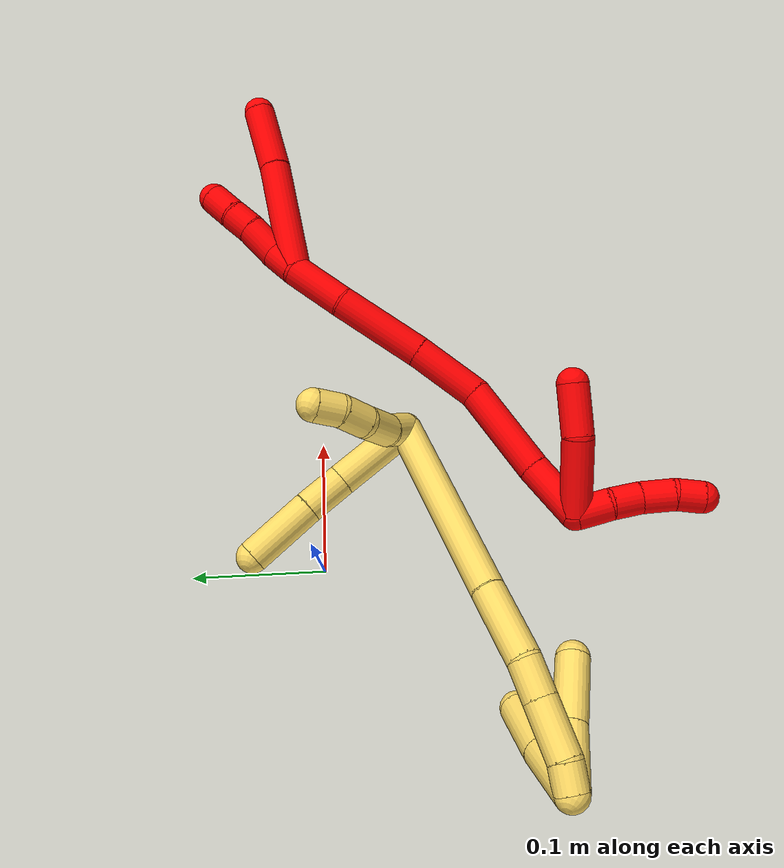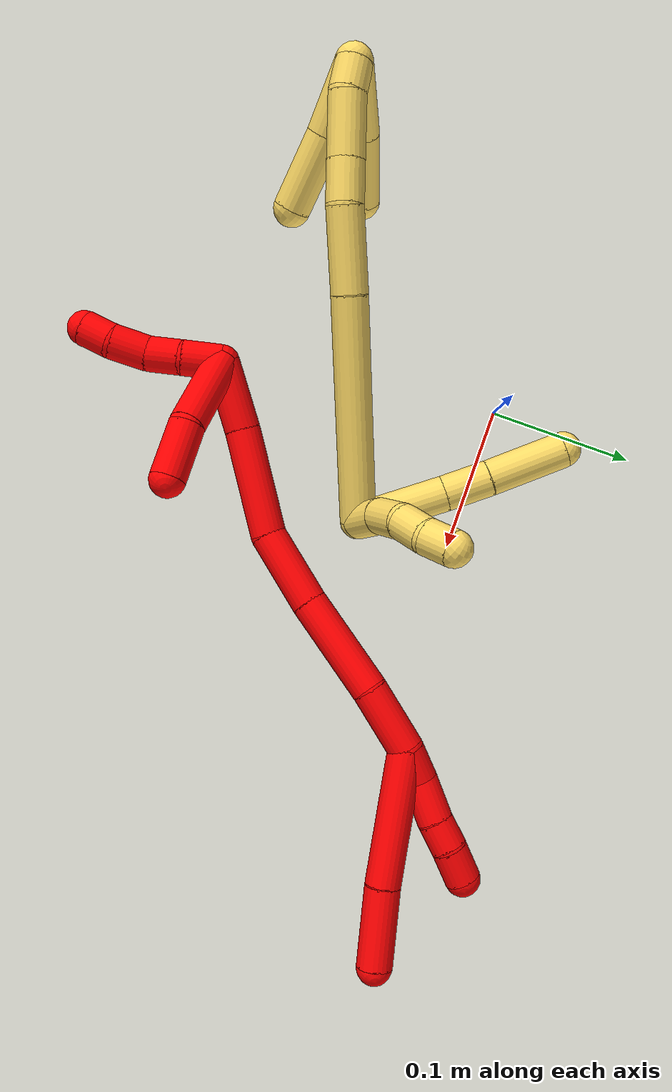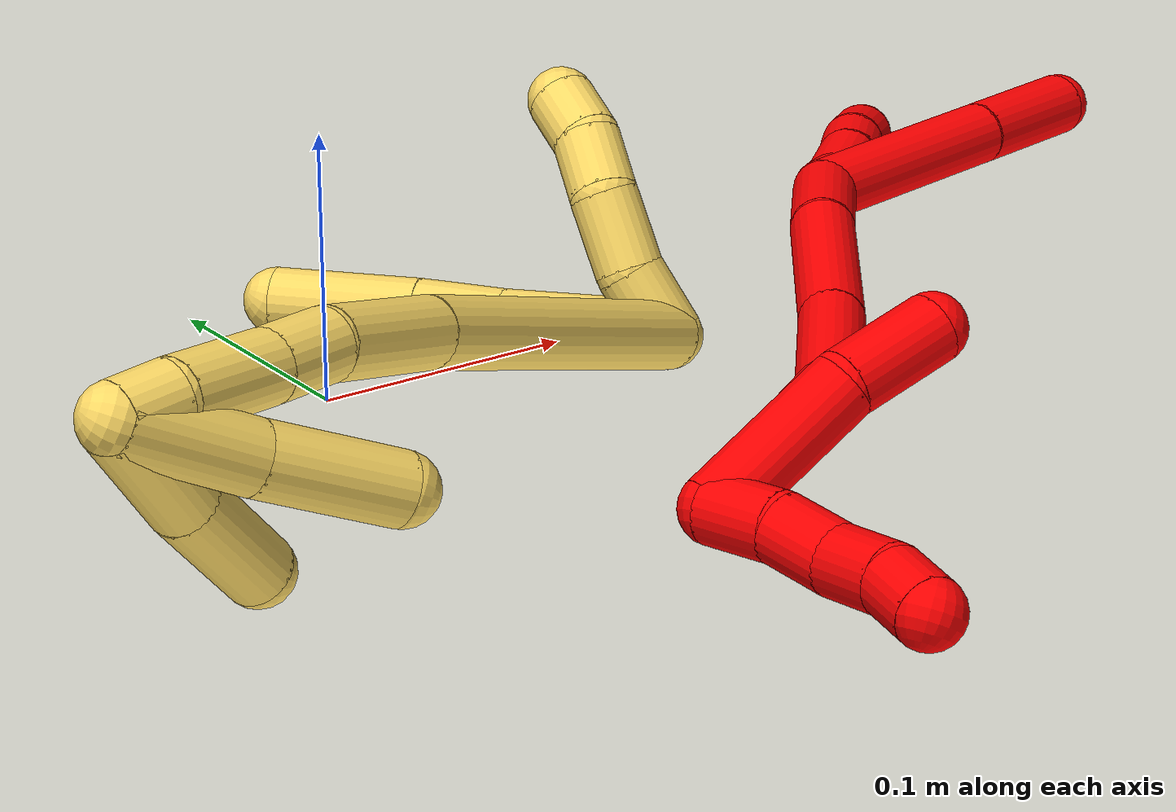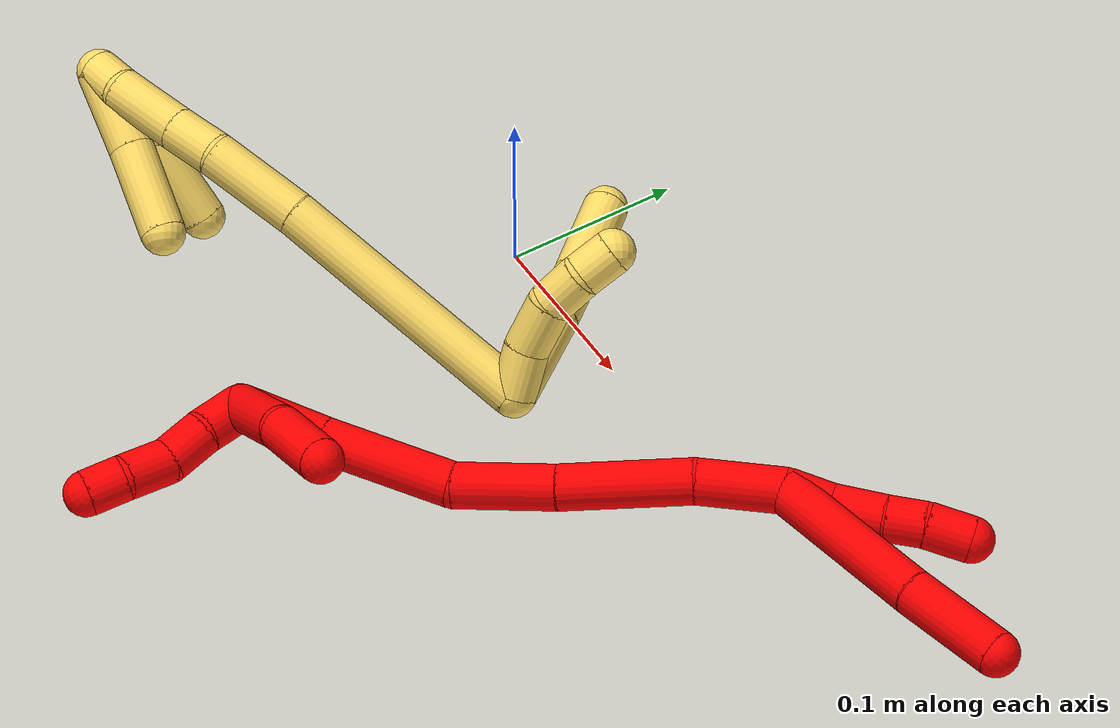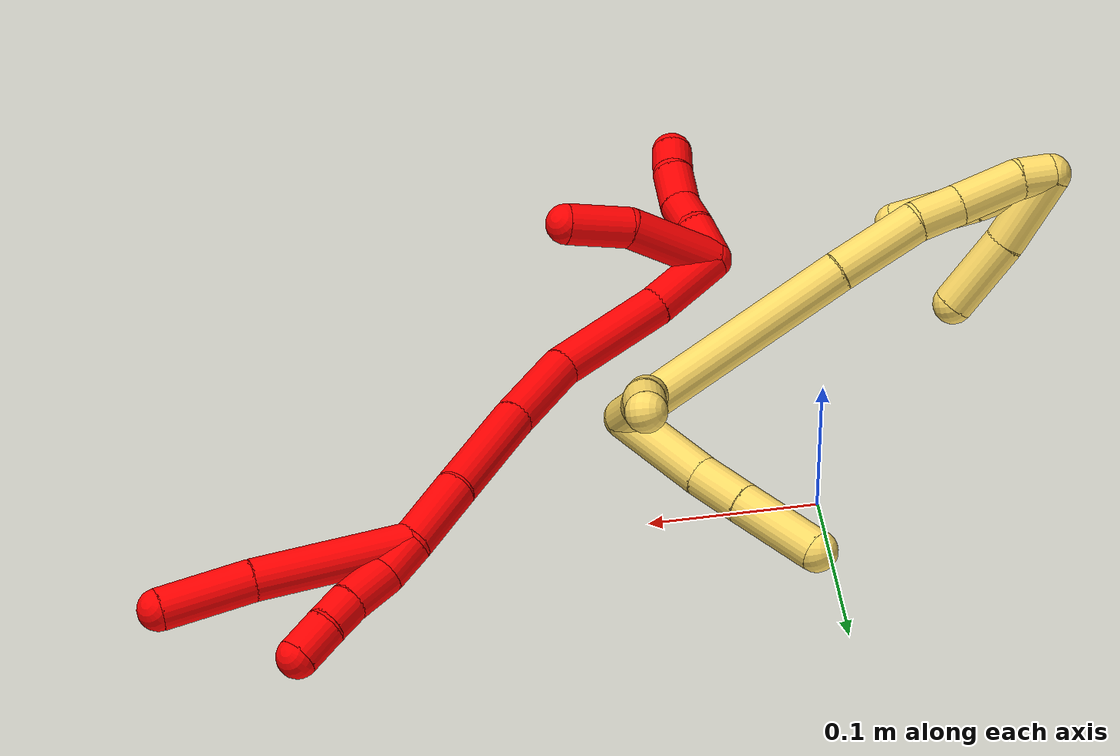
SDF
<sdf version="1.7">
 <world name="default">
  <model name="2">
   <static>0</static>
   <link name="2">
    <collision name="collision-cylinder-e_1_2_8">
     <pose>0.03824 0.007991 0.026102 -0.297097 0.950825 -0.153775</pose>
     <geometry><cylinder><radius>0.0125</radius><length>0.093967</length></cylinder></geometry>
     <surface>
      <friction><ode><mu>1.16</mu><mu2>1.16</mu2><slip1>0</slip1><slip2>0</slip2></ode></friction>
      <contact><ode><kp>1e+06</kp><kd>1</kd><max_vel>0</max_vel><min_depth>0.001</min_depth></ode></contact>
     </surface>
    </collision>
    <visual name="visual-cylinder-e_1_2_8">
     <pose>0.03824 0.007991 0.026102 -0.297097 0.950825 -0.153775</pose>
     <geometry><cylinder><radius>0.0125</radius><length>0.093967</length></cylinder></geometry>
     <material><ambient>1 0 0 1</ambient></material>
    </visual>
    <collision name="collision-cylinder-e_2_8_6">
     <pose>0.099154 0.022762 0.067199 -0.424618 0.943 -0.218927</pose>
     <geometry><cylinder><radius>0.0125</radius><length>0.056033</length></cylinder></geometry>
     <surface>
      <friction><ode><mu>1.16</mu><mu2>1.16</mu2><slip1>0</slip1><slip2>0</slip2></ode></friction>
      <contact><ode><kp>1e+06</kp><kd>1</kd><max_vel>0</max_vel><min_depth>0.001</min_depth></ode></contact>
     </surface>
    </collision>
    <visual name="visual-cylinder-e_2_8_6">
     <pose>0.099154 0.022762 0.067199 -0.424618 0.943 -0.218927</pose>
     <geometry><cylinder><radius>0.0125</radius><length>0.056033</length></cylinder></geometry>
     <material><ambient>1 0 0 1</ambient></material>
    </visual>
    <collision name="collision-cylinder-e_1_2_9">
     <pose>0.007585 0.008676 0.004188 -1.12109 0.666992 -0.428256</pose>
     <geometry><cylinder><radius>0.0125</radius><length>0.024523</length></cylinder></geometry>
     <surface>
      <friction><ode><mu>1.16</mu><mu2>1.16</mu2><slip1>0</slip1><slip2>0</slip2></ode></friction>
      <contact><ode><kp>1e+06</kp><kd>1</kd><max_vel>0</max_vel><min_depth>0.001</min_depth></ode></contact>
     </surface>
    </collision>
    <visual name="visual-cylinder-e_1_2_9">
     <pose>0.007585 0.008676 0.004188 -1.12109 0.666992 -0.428256</pose>
     <geometry><cylinder><radius>0.0125</radius><length>0.024523</length></cylinder></geometry>
     <material><ambient>1 0 0 1</ambient></material>
    </visual>
    <collision name="collision-cylinder-e_2_9_10">
     <pose>0.023178 0.026616 0.016867 -0.828856 0.567333 -0.255097</pose>
     <geometry><cylinder><radius>0.0125</radius><length>0.029802</length></cylinder></geometry>
     <surface>
      <friction><ode><mu>1.16</mu><mu2>1.16</mu2><slip1>0</slip1><slip2>0</slip2></ode></friction>
      <contact><ode><kp>1e+06</kp><kd>1</kd><max_vel>0</max_vel><min_depth>0.001</min_depth></ode></contact>
     </surface>
    </collision>
    <visual name="visual-cylinder-e_2_9_10">
     <pose>0.023178 0.026616 0.016867 -0.828856 0.567333 -0.255097</pose>
     <geometry><cylinder><radius>0.0125</radius><length>0.029802</length></cylinder></geometry>
     <material><ambient>1 0 0 1</ambient></material>
    </visual>
    <collision name="collision-cylinder-e_3_10_11">
     <pose>0.036308 0.043288 0.030682 -0.947683 0.511594 -0.266634</pose>
     <geometry><cylinder><radius>0.0125</radius><length>0.020925</length></cylinder></geometry>
     <surface>
      <friction><ode><mu>1.16</mu><mu2>1.16</mu2><slip1>0</slip1><slip2>0</slip2></ode></friction>
      <contact><ode><kp>1e+06</kp><kd>1</kd><max_vel>0</max_vel><min_depth>0.001</min_depth></ode></contact>
     </surface>
    </collision>
    <visual name="visual-cylinder-e_3_10_11">
     <pose>0.036308 0.043288 0.030682 -0.947683 0.511594 -0.266634</pose>
     <geometry><cylinder><radius>0.0125</radius><length>0.020925</length></cylinder></geometry>
     <material><ambient>1 0 0 1</ambient></material>
    </visual>
    <collision name="collision-cylinder-e_4_11_5">
     <pose>0.048892 0.059356 0.040744 -1.07018 0.647266 -0.392546</pose>
     <geometry><cylinder><radius>0.0125</radius><length>0.02475</length></cylinder></geometry>
     <surface>
      <friction><ode><mu>1.16</mu><mu2>1.16</mu2><slip1>0</slip1><slip2>0</slip2></ode></friction>
      <contact><ode><kp>1e+06</kp><kd>1</kd><max_vel>0</max_vel><min_depth>0.001</min_depth></ode></contact>
     </surface>
    </collision>
    <visual name="visual-cylinder-e_4_11_5">
     <pose>0.048892 0.059356 0.040744 -1.07018 0.647266 -0.392546</pose>
     <geometry><cylinder><radius>0.0125</radius><length>0.02475</length></cylinder></geometry>
     <material><ambient>1 0 0 1</ambient></material>
    </visual>
    <collision name="collision-cylinder-e_1_2_12">
     <pose>-0.010244 -0.017988 -0.0116 2.14357 -0.446372 -0.789192</pose>
     <geometry><cylinder><radius>0.0125</radius><length>0.047459</length></cylinder></geometry>
     <surface>
      <friction><ode><mu>1.16</mu><mu2>1.16</mu2><slip1>0</slip1><slip2>0</slip2></ode></friction>
      <contact><ode><kp>1e+06</kp><kd>1</kd><max_vel>0</max_vel><min_depth>0.001</min_depth></ode></contact>
     </surface>
    </collision>
    <visual name="visual-cylinder-e_1_2_12">
     <pose>-0.010244 -0.017988 -0.0116 2.14357 -0.446372 -0.789192</pose>
     <geometry><cylinder><radius>0.0125</radius><length>0.047459</length></cylinder></geometry>
     <material><ambient>1 0 0 1</ambient></material>
    </visual>
    <collision name="collision-cylinder-e_2_12_13">
     <pose>-0.031475 -0.063099 -0.044697 2.24099 -0.307413 -0.620277</pose>
     <geometry><cylinder><radius>0.0125</radius><length>0.072621</length></cylinder></geometry>
     <surface>
      <friction><ode><mu>1.16</mu><mu2>1.16</mu2><slip1>0</slip1><slip2>0</slip2></ode></friction>
      <contact><ode><kp>1e+06</kp><kd>1</kd><max_vel>0</max_vel><min_depth>0.001</min_depth></ode></contact>
     </surface>
    </collision>
    <visual name="visual-cylinder-e_2_12_13">
     <pose>-0.031475 -0.063099 -0.044697 2.24099 -0.307413 -0.620277</pose>
     <geometry><cylinder><radius>0.0125</radius><length>0.072621</length></cylinder></geometry>
     <material><ambient>1 0 0 1</ambient></material>
    </visual>
    <collision name="collision-cylinder-e_3_13_14">
     <pose>-0.052668 -0.110215 -0.082484 2.25448 -0.376829 -0.763276</pose>
     <geometry><cylinder><radius>0.0125</radius><length>0.05547</length></cylinder></geometry>
     <surface>
      <friction><ode><mu>1.16</mu><mu2>1.16</mu2><slip1>0</slip1><slip2>0</slip2></ode></friction>
      <contact><ode><kp>1e+06</kp><kd>1</kd><max_vel>0</max_vel><min_depth>0.001</min_depth></ode></contact>
     </surface>
    </collision>
    <visual name="visual-cylinder-e_3_13_14">
     <pose>-0.052668 -0.110215 -0.082484 2.25448 -0.376829 -0.763276</pose>
     <geometry><cylinder><radius>0.0125</radius><length>0.05547</length></cylinder></geometry>
     <material><ambient>1 0 0 1</ambient></material>
    </visual>
    <collision name="collision-cylinder-e_4_14_15">
     <pose>-0.087017 -0.150633 -0.119622 2.36646 -0.691102 -1.44542</pose>
     <geometry><cylinder><radius>0.0125</radius><length>0.075756</length></cylinder></geometry>
     <surface>
      <friction><ode><mu>1.16</mu><mu2>1.16</mu2><slip1>0</slip1><slip2>0</slip2></ode></friction>
      <contact><ode><kp>1e+06</kp><kd>1</kd><max_vel>0</max_vel><min_depth>0.001</min_depth></ode></contact>
     </surface>
    </collision>
    <visual name="visual-cylinder-e_4_14_15">
     <pose>-0.087017 -0.150633 -0.119622 2.36646 -0.691102 -1.44542</pose>
     <geometry><cylinder><radius>0.0125</radius><length>0.075756</length></cylinder></geometry>
     <material><ambient>1 0 0 1</ambient></material>
    </visual>
    <collision name="collision-cylinder-e_5_15_1">
     <pose>-0.12726 -0.185753 -0.151316 2.20656 -0.722526 -1.28501</pose>
     <geometry><cylinder><radius>0.0125</radius><length>0.048694</length></cylinder></geometry>
     <surface>
      <friction><ode><mu>1.16</mu><mu2>1.16</mu2><slip1>0</slip1><slip2>0</slip2></ode></friction>
      <contact><ode><kp>1e+06</kp><kd>1</kd><max_vel>0</max_vel><min_depth>0.001</min_depth></ode></contact>
     </surface>
    </collision>
    <visual name="visual-cylinder-e_5_15_1">
     <pose>-0.12726 -0.185753 -0.151316 2.20656 -0.722526 -1.28501</pose>
     <geometry><cylinder><radius>0.0125</radius><length>0.048694</length></cylinder></geometry>
     <material><ambient>1 0 0 1</ambient></material>
    </visual>
    <collision name="collision-cylinder-e_1_1_16">
     <pose>-0.13898 -0.213458 -0.163181 1.64904 0.323864 0.349736</pose>
     <geometry><cylinder><radius>0.0125</radius><length>0.02753</length></cylinder></geometry>
     <surface>
      <friction><ode><mu>1.16</mu><mu2>1.16</mu2><slip1>0</slip1><slip2>0</slip2></ode></friction>
      <contact><ode><kp>1e+06</kp><kd>1</kd><max_vel>0</max_vel><min_depth>0.001</min_depth></ode></contact>
     </surface>
    </collision>
    <visual name="visual-cylinder-e_1_1_16">
     <pose>-0.13898 -0.213458 -0.163181 1.64904 0.323864 0.349736</pose>
     <geometry><cylinder><radius>0.0125</radius><length>0.02753</length></cylinder></geometry>
     <material><ambient>1 0 0 1</ambient></material>
    </visual>
    <collision name="collision-cylinder-e_2_16_17">
     <pose>-0.129724 -0.237364 -0.167398 1.85616 0.405499 0.535889</pose>
     <geometry><cylinder><radius>0.0125</radius><length>0.024717</length></cylinder></geometry>
     <surface>
      <friction><ode><mu>1.16</mu><mu2>1.16</mu2><slip1>0</slip1><slip2>0</slip2></ode></friction>
      <contact><ode><kp>1e+06</kp><kd>1</kd><max_vel>0</max_vel><min_depth>0.001</min_depth></ode></contact>
     </surface>
    </collision>
    <visual name="visual-cylinder-e_2_16_17">
     <pose>-0.129724 -0.237364 -0.167398 1.85616 0.405499 0.535889</pose>
     <geometry><cylinder><radius>0.0125</radius><length>0.024717</length></cylinder></geometry>
     <material><ambient>1 0 0 1</ambient></material>
    </visual>
    <collision name="collision-cylinder-e_3_17_18">
     <pose>-0.123278 -0.261309 -0.172333 1.70324 0.118807 0.135637</pose>
     <geometry><cylinder><radius>0.0125</radius><length>0.026512</length></cylinder></geometry>
     <surface>
      <friction><ode><mu>1.16</mu><mu2>1.16</mu2><slip1>0</slip1><slip2>0</slip2></ode></friction>
      <contact><ode><kp>1e+06</kp><kd>1</kd><max_vel>0</max_vel><min_depth>0.001</min_depth></ode></contact>
     </surface>
    </collision>
    <visual name="visual-cylinder-e_3_17_18">
     <pose>-0.123278 -0.261309 -0.172333 1.70324 0.118807 0.135637</pose>
     <geometry><cylinder><radius>0.0125</radius><length>0.026512</length></cylinder></geometry>
     <material><ambient>1 0 0 1</ambient></material>
    </visual>
    <collision name="collision-cylinder-e_4_18_4">
     <pose>-0.120673 -0.284118 -0.178124 1.96435 0.097505 0.145918</pose>
     <geometry><cylinder><radius>0.0125</radius><length>0.021241</length></cylinder></geometry>
     <surface>
      <friction><ode><mu>1.16</mu><mu2>1.16</mu2><slip1>0</slip1><slip2>0</slip2></ode></friction>
      <contact><ode><kp>1e+06</kp><kd>1</kd><max_vel>0</max_vel><min_depth>0.001</min_depth></ode></contact>
     </surface>
    </collision>
    <visual name="visual-cylinder-e_4_18_4">
     <pose>-0.120673 -0.284118 -0.178124 1.96435 0.097505 0.145918</pose>
     <geometry><cylinder><radius>0.0125</radius><length>0.021241</length></cylinder></geometry>
     <material><ambient>1 0 0 1</ambient></material>
    </visual>
    <collision name="collision-cylinder-e_1_1_19">
     <pose>-0.129274 -0.205852 -0.136222 0.2054 0.488651 0.051377</pose>
     <geometry><cylinder><radius>0.0125</radius><length>0.060015</length></cylinder></geometry>
     <surface>
      <friction><ode><mu>1.16</mu><mu2>1.16</mu2><slip1>0</slip1><slip2>0</slip2></ode></friction>
      <contact><ode><kp>1e+06</kp><kd>1</kd><max_vel>0</max_vel><min_depth>0.001</min_depth></ode></contact>
     </surface>
    </collision>
    <visual name="visual-cylinder-e_1_1_19">
     <pose>-0.129274 -0.205852 -0.136222 0.2054 0.488651 0.051377</pose>
     <geometry><cylinder><radius>0.0125</radius><length>0.060015</length></cylinder></geometry>
     <material><ambient>1 0 0 1</ambient></material>
    </visual>
    <collision name="collision-cylinder-e_2_19_3">
     <pose>-0.101296 -0.211607 -0.095909 0.024356 0.768149 0.009844</pose>
     <geometry><cylinder><radius>0.0125</radius><length>0.039985</length></cylinder></geometry>
     <surface>
      <friction><ode><mu>1.16</mu><mu2>1.16</mu2><slip1>0</slip1><slip2>0</slip2></ode></friction>
      <contact><ode><kp>1e+06</kp><kd>1</kd><max_vel>0</max_vel><min_depth>0.001</min_depth></ode></contact>
     </surface>
    </collision>
    <visual name="visual-cylinder-e_2_19_3">
     <pose>-0.101296 -0.211607 -0.095909 0.024356 0.768149 0.009844</pose>
     <geometry><cylinder><radius>0.0125</radius><length>0.039985</length></cylinder></geometry>
     <material><ambient>1 0 0 1</ambient></material>
    </visual>
    <collision name="collision-sphere-3">
     <pose>-0.087405 -0.211957 -0.081535 0 -0 0</pose>
     <geometry><sphere><radius>0.0125</radius></sphere></geometry>
     <surface>
      <friction><ode><mu>1.16</mu><mu2>1.16</mu2><slip1>0</slip1><slip2>0</slip2></ode></friction>
      <contact><ode><kp>1e+06</kp><kd>1</kd><max_vel>0</max_vel><min_depth>0.001</min_depth></ode></contact>
     </surface>
    </collision>
    <visual name="visual-sphere-3">
     <pose>-0.087405 -0.211957 -0.081535 0 -0 0</pose>
     <geometry><sphere><radius>0.0125</radius></sphere></geometry>
     <material><ambient>1 0 0 1</ambient></material>
    </visual>
    <collision name="collision-sphere-19">
     <pose>-0.115187 -0.211256 -0.110283 0 -0 0</pose>
     <geometry><sphere><radius>0.0125</radius></sphere></geometry>
     <surface>
      <friction><ode><mu>1.16</mu><mu2>1.16</mu2><slip1>0</slip1><slip2>0</slip2></ode></friction>
      <contact><ode><kp>1e+06</kp><kd>1</kd><max_vel>0</max_vel><min_depth>0.001</min_depth></ode></contact>
     </surface>
    </collision>
    <visual name="visual-sphere-19">
     <pose>-0.115187 -0.211256 -0.110283 0 -0 0</pose>
     <geometry><sphere><radius>0.0125</radius></sphere></geometry>
     <material><ambient>1 0 0 1</ambient></material>
    </visual>
    <collision name="collision-sphere-11">
     <pose>0.04143 0.050696 0.036006 0 -0 0</pose>
     <geometry><sphere><radius>0.0125</radius></sphere></geometry>
     <surface>
      <friction><ode><mu>1.16</mu><mu2>1.16</mu2><slip1>0</slip1><slip2>0</slip2></ode></friction>
      <contact><ode><kp>1e+06</kp><kd>1</kd><max_vel>0</max_vel><min_depth>0.001</min_depth></ode></contact>
     </surface>
    </collision>
    <visual name="visual-sphere-11">
     <pose>0.04143 0.050696 0.036006 0 -0 0</pose>
     <geometry><sphere><radius>0.0125</radius></sphere></geometry>
     <material><ambient>1 0 0 1</ambient></material>
    </visual>
    <collision name="collision-sphere-10">
     <pose>0.031186 0.035879 0.025359 0 -0 0</pose>
     <geometry><sphere><radius>0.0125</radius></sphere></geometry>
     <surface>
      <friction><ode><mu>1.16</mu><mu2>1.16</mu2><slip1>0</slip1><slip2>0</slip2></ode></friction>
      <contact><ode><kp>1e+06</kp><kd>1</kd><max_vel>0</max_vel><min_depth>0.001</min_depth></ode></contact>
     </surface>
    </collision>
    <visual name="visual-sphere-10">
     <pose>0.031186 0.035879 0.025359 0 -0 0</pose>
     <geometry><sphere><radius>0.0125</radius></sphere></geometry>
     <material><ambient>1 0 0 1</ambient></material>
    </visual>
    <collision name="collision-sphere-6">
     <pose>0.121828 0.029541 0.082193 0 -0 0</pose>
     <geometry><sphere><radius>0.0125</radius></sphere></geometry>
     <surface>
      <friction><ode><mu>1.16</mu><mu2>1.16</mu2><slip1>0</slip1><slip2>0</slip2></ode></friction>
      <contact><ode><kp>1e+06</kp><kd>1</kd><max_vel>0</max_vel><min_depth>0.001</min_depth></ode></contact>
     </surface>
    </collision>
    <visual name="visual-sphere-6">
     <pose>0.121828 0.029541 0.082193 0 -0 0</pose>
     <geometry><sphere><radius>0.0125</radius></sphere></geometry>
     <material><ambient>1 0 0 1</ambient></material>
    </visual>
    <collision name="collision-sphere-9">
     <pose>0.015171 0.017352 0.008376 0 -0 0</pose>
     <geometry><sphere><radius>0.0125</radius></sphere></geometry>
     <surface>
      <friction><ode><mu>1.16</mu><mu2>1.16</mu2><slip1>0</slip1><slip2>0</slip2></ode></friction>
      <contact><ode><kp>1e+06</kp><kd>1</kd><max_vel>0</max_vel><min_depth>0.001</min_depth></ode></contact>
     </surface>
    </collision>
    <visual name="visual-sphere-9">
     <pose>0.015171 0.017352 0.008376 0 -0 0</pose>
     <geometry><sphere><radius>0.0125</radius></sphere></geometry>
     <material><ambient>1 0 0 1</ambient></material>
    </visual>
    <collision name="collision-sphere-2">
     <geometry><sphere><radius>0.0125</radius></sphere></geometry>
     <surface>
      <friction><ode><mu>1.16</mu><mu2>1.16</mu2><slip1>0</slip1><slip2>0</slip2></ode></friction>
      <contact><ode><kp>1e+06</kp><kd>1</kd><max_vel>0</max_vel><min_depth>0.001</min_depth></ode></contact>
     </surface>
    </collision>
    <visual name="visual-sphere-2">
     <geometry><sphere><radius>0.0125</radius></sphere></geometry>
     <material><ambient>1 0 0 1</ambient></material>
    </visual>
    <collision name="collision-sphere-8">
     <pose>0.076479 0.015983 0.052204 0 -0 0</pose>
     <geometry><sphere><radius>0.0125</radius></sphere></geometry>
     <surface>
      <friction><ode><mu>1.16</mu><mu2>1.16</mu2><slip1>0</slip1><slip2>0</slip2></ode></friction>
      <contact><ode><kp>1e+06</kp><kd>1</kd><max_vel>0</max_vel><min_depth>0.001</min_depth></ode></contact>
     </surface>
    </collision>
    <visual name="visual-sphere-8">
     <pose>0.076479 0.015983 0.052204 0 -0 0</pose>
     <geometry><sphere><radius>0.0125</radius></sphere></geometry>
     <material><ambient>1 0 0 1</ambient></material>
    </visual>
    <collision name="collision-sphere-5">
     <pose>0.056354 0.068017 0.045482 0 -0 0</pose>
     <geometry><sphere><radius>0.0125</radius></sphere></geometry>
     <surface>
      <friction><ode><mu>1.16</mu><mu2>1.16</mu2><slip1>0</slip1><slip2>0</slip2></ode></friction>
      <contact><ode><kp>1e+06</kp><kd>1</kd><max_vel>0</max_vel><min_depth>0.001</min_depth></ode></contact>
     </surface>
    </collision>
    <visual name="visual-sphere-5">
     <pose>0.056354 0.068017 0.045482 0 -0 0</pose>
     <geometry><sphere><radius>0.0125</radius></sphere></geometry>
     <material><ambient>1 0 0 1</ambient></material>
    </visual>
    <collision name="collision-sphere-12">
     <pose>-0.020488 -0.035977 -0.023201 0 -0 0</pose>
     <geometry><sphere><radius>0.0125</radius></sphere></geometry>
     <surface>
      <friction><ode><mu>1.16</mu><mu2>1.16</mu2><slip1>0</slip1><slip2>0</slip2></ode></friction>
      <contact><ode><kp>1e+06</kp><kd>1</kd><max_vel>0</max_vel><min_depth>0.001</min_depth></ode></contact>
     </surface>
    </collision>
    <visual name="visual-sphere-12">
     <pose>-0.020488 -0.035977 -0.023201 0 -0 0</pose>
     <geometry><sphere><radius>0.0125</radius></sphere></geometry>
     <material><ambient>1 0 0 1</ambient></material>
    </visual>
    <collision name="collision-sphere-13">
     <pose>-0.042463 -0.090222 -0.066194 0 -0 0</pose>
     <geometry><sphere><radius>0.0125</radius></sphere></geometry>
     <surface>
      <friction><ode><mu>1.16</mu><mu2>1.16</mu2><slip1>0</slip1><slip2>0</slip2></ode></friction>
      <contact><ode><kp>1e+06</kp><kd>1</kd><max_vel>0</max_vel><min_depth>0.001</min_depth></ode></contact>
     </surface>
    </collision>
    <visual name="visual-sphere-13">
     <pose>-0.042463 -0.090222 -0.066194 0 -0 0</pose>
     <geometry><sphere><radius>0.0125</radius></sphere></geometry>
     <material><ambient>1 0 0 1</ambient></material>
    </visual>
    <collision name="collision-sphere-14">
     <pose>-0.062874 -0.130208 -0.098774 0 -0 0</pose>
     <geometry><sphere><radius>0.0125</radius></sphere></geometry>
     <surface>
      <friction><ode><mu>1.16</mu><mu2>1.16</mu2><slip1>0</slip1><slip2>0</slip2></ode></friction>
      <contact><ode><kp>1e+06</kp><kd>1</kd><max_vel>0</max_vel><min_depth>0.001</min_depth></ode></contact>
     </surface>
    </collision>
    <visual name="visual-sphere-14">
     <pose>-0.062874 -0.130208 -0.098774 0 -0 0</pose>
     <geometry><sphere><radius>0.0125</radius></sphere></geometry>
     <material><ambient>1 0 0 1</ambient></material>
    </visual>
    <collision name="collision-sphere-15">
     <pose>-0.11116 -0.171058 -0.140471 0 -0 0</pose>
     <geometry><sphere><radius>0.0125</radius></sphere></geometry>
     <surface>
      <friction><ode><mu>1.16</mu><mu2>1.16</mu2><slip1>0</slip1><slip2>0</slip2></ode></friction>
      <contact><ode><kp>1e+06</kp><kd>1</kd><max_vel>0</max_vel><min_depth>0.001</min_depth></ode></contact>
     </surface>
    </collision>
    <visual name="visual-sphere-15">
     <pose>-0.11116 -0.171058 -0.140471 0 -0 0</pose>
     <geometry><sphere><radius>0.0125</radius></sphere></geometry>
     <material><ambient>1 0 0 1</ambient></material>
    </visual>
    <collision name="collision-sphere-1">
     <pose>-0.14336 -0.200448 -0.162161 0 -0 0</pose>
     <geometry><sphere><radius>0.0125</radius></sphere></geometry>
     <surface>
      <friction><ode><mu>1.16</mu><mu2>1.16</mu2><slip1>0</slip1><slip2>0</slip2></ode></friction>
      <contact><ode><kp>1e+06</kp><kd>1</kd><max_vel>0</max_vel><min_depth>0.001</min_depth></ode></contact>
     </surface>
    </collision>
    <visual name="visual-sphere-1">
     <pose>-0.14336 -0.200448 -0.162161 0 -0 0</pose>
     <geometry><sphere><radius>0.0125</radius></sphere></geometry>
     <material><ambient>1 0 0 1</ambient></material>
    </visual>
    <collision name="collision-sphere-18">
     <pose>-0.121707 -0.274356 -0.174071 0 -0 0</pose>
     <geometry><sphere><radius>0.0125</radius></sphere></geometry>
     <surface>
      <friction><ode><mu>1.16</mu><mu2>1.16</mu2><slip1>0</slip1><slip2>0</slip2></ode></friction>
      <contact><ode><kp>1e+06</kp><kd>1</kd><max_vel>0</max_vel><min_depth>0.001</min_depth></ode></contact>
     </surface>
    </collision>
    <visual name="visual-sphere-18">
     <pose>-0.121707 -0.274356 -0.174071 0 -0 0</pose>
     <geometry><sphere><radius>0.0125</radius></sphere></geometry>
     <material><ambient>1 0 0 1</ambient></material>
    </visual>
    <collision name="collision-sphere-16">
     <pose>-0.134599 -0.226468 -0.164201 0 -0 0</pose>
     <geometry><sphere><radius>0.0125</radius></sphere></geometry>
     <surface>
      <friction><ode><mu>1.16</mu><mu2>1.16</mu2><slip1>0</slip1><slip2>0</slip2></ode></friction>
      <contact><ode><kp>1e+06</kp><kd>1</kd><max_vel>0</max_vel><min_depth>0.001</min_depth></ode></contact>
     </surface>
    </collision>
    <visual name="visual-sphere-16">
     <pose>-0.134599 -0.226468 -0.164201 0 -0 0</pose>
     <geometry><sphere><radius>0.0125</radius></sphere></geometry>
     <material><ambient>1 0 0 1</ambient></material>
    </visual>
    <collision name="collision-sphere-17">
     <pose>-0.124849 -0.248261 -0.170594 0 -0 0</pose>
     <geometry><sphere><radius>0.0125</radius></sphere></geometry>
     <surface>
      <friction><ode><mu>1.16</mu><mu2>1.16</mu2><slip1>0</slip1><slip2>0</slip2></ode></friction>
      <contact><ode><kp>1e+06</kp><kd>1</kd><max_vel>0</max_vel><min_depth>0.001</min_depth></ode></contact>
     </surface>
    </collision>
    <visual name="visual-sphere-17">
     <pose>-0.124849 -0.248261 -0.170594 0 -0 0</pose>
     <geometry><sphere><radius>0.0125</radius></sphere></geometry>
     <material><ambient>1 0 0 1</ambient></material>
    </visual>
    <collision name="collision-sphere-4">
     <pose>-0.119639 -0.29388 -0.182178 0 -0 0</pose>
     <geometry><sphere><radius>0.0125</radius></sphere></geometry>
     <surface>
      <friction><ode><mu>1.16</mu><mu2>1.16</mu2><slip1>0</slip1><slip2>0</slip2></ode></friction>
      <contact><ode><kp>1e+06</kp><kd>1</kd><max_vel>0</max_vel><min_depth>0.001</min_depth></ode></contact>
     </surface>
    </collision>
    <visual name="visual-sphere-4">
     <pose>-0.119639 -0.29388 -0.182178 0 -0 0</pose>
     <geometry><sphere><radius>0.0125</radius></sphere></geometry>
     <material><ambient>1 0 0 1</ambient></material>
    </visual>
    <inertial>
     <pose>-0.041546 -0.096161 -0.060428 0 -0 0</pose>
     <mass>0.75</mass>
     <inertia><ixx>6.8e-05</ixx><ixy>0</ixy><ixz>0</ixz><iyy>2.1e-05</iyy><iyz>0</iyz><izz>2.5e-05</izz></inertia>
    </inertial>
   </link>
   <pose>0.240284 0.017576 0.026976 -0.321356 0.505895 -0.174657</pose>
  </model>
  <model name="5">
   <static>0</static>
   <link name="5">
    <collision name="collision-cylinder-e_1_2_8">
     <pose>0.019579 0.000236 0.024557 -0.009598 0.673054 -0.003358</pose>
     <geometry><cylinder><radius>0.0125</radius><length>0.062816</length></cylinder></geometry>
     <surface>
      <friction><ode><mu>1.16</mu><mu2>1.16</mu2><slip1>0</slip1><slip2>0</slip2></ode></friction>
      <contact><ode><kp>1e+06</kp><kd>1</kd><max_vel>0</max_vel><min_depth>0.001</min_depth></ode></contact>
     </surface>
    </collision>
    <visual name="visual-cylinder-e_1_2_8">
     <pose>0.019579 0.000236 0.024557 -0.009598 0.673054 -0.003358</pose>
     <geometry><cylinder><radius>0.0125</radius><length>0.062816</length></cylinder></geometry>
     <material><ambient>1 0.858824 0.4 1</ambient></material>
    </visual>
    <collision name="collision-cylinder-e_2_8_9">
     <pose>0.048495 0.00017 0.062481 0.022533 0.609614 0.00709</pose>
     <geometry><cylinder><radius>0.0125</radius><length>0.032614</length></cylinder></geometry>
     <surface>
      <friction><ode><mu>1.16</mu><mu2>1.16</mu2><slip1>0</slip1><slip2>0</slip2></ode></friction>
      <contact><ode><kp>1e+06</kp><kd>1</kd><max_vel>0</max_vel><min_depth>0.001</min_depth></ode></contact>
     </surface>
    </collision>
    <visual name="visual-cylinder-e_2_8_9">
     <pose>0.048495 0.00017 0.062481 0.022533 0.609614 0.00709</pose>
     <geometry><cylinder><radius>0.0125</radius><length>0.032614</length></cylinder></geometry>
     <material><ambient>1 0.858824 0.4 1</ambient></material>
    </visual>
    <collision name="collision-cylinder-e_3_9_6">
     <pose>0.073457 0.000682 0.098201 -0.036368 0.60976 -0.011446</pose>
     <geometry><cylinder><radius>0.0125</radius><length>0.05457</length></cylinder></geometry>
     <surface>
      <friction><ode><mu>1.16</mu><mu2>1.16</mu2><slip1>0</slip1><slip2>0</slip2></ode></friction>
      <contact><ode><kp>1e+06</kp><kd>1</kd><max_vel>0</max_vel><min_depth>0.001</min_depth></ode></contact>
     </surface>
    </collision>
    <visual name="visual-cylinder-e_3_9_6">
     <pose>0.073457 0.000682 0.098201 -0.036368 0.60976 -0.011446</pose>
     <geometry><cylinder><radius>0.0125</radius><length>0.05457</length></cylinder></geometry>
     <material><ambient>1 0.858824 0.4 1</ambient></material>
    </visual>
    <collision name="collision-cylinder-e_1_2_10">
     <pose>-0.001329 -0.008544 0.010272 0.693855 -0.099131 -0.035866</pose>
     <geometry><cylinder><radius>0.0125</radius><length>0.026854</length></cylinder></geometry>
     <surface>
      <friction><ode><mu>1.16</mu><mu2>1.16</mu2><slip1>0</slip1><slip2>0</slip2></ode></friction>
      <contact><ode><kp>1e+06</kp><kd>1</kd><max_vel>0</max_vel><min_depth>0.001</min_depth></ode></contact>
     </surface>
    </collision>
    <visual name="visual-cylinder-e_1_2_10">
     <pose>-0.001329 -0.008544 0.010272 0.693855 -0.099131 -0.035866</pose>
     <geometry><cylinder><radius>0.0125</radius><length>0.026854</length></cylinder></geometry>
     <material><ambient>1 0.858824 0.4 1</ambient></material>
    </visual>
    <collision name="collision-cylinder-e_2_10_11">
     <pose>-0.003762 -0.028949 0.028848 0.959901 -0.076115 -0.039635</pose>
     <geometry><cylinder><radius>0.0125</radius><length>0.029042</length></cylinder></geometry>
     <surface>
      <friction><ode><mu>1.16</mu><mu2>1.16</mu2><slip1>0</slip1><slip2>0</slip2></ode></friction>
      <contact><ode><kp>1e+06</kp><kd>1</kd><max_vel>0</max_vel><min_depth>0.001</min_depth></ode></contact>
     </surface>
    </collision>
    <visual name="visual-cylinder-e_2_10_11">
     <pose>-0.003762 -0.028949 0.028848 0.959901 -0.076115 -0.039635</pose>
     <geometry><cylinder><radius>0.0125</radius><length>0.029042</length></cylinder></geometry>
     <material><ambient>1 0.858824 0.4 1</ambient></material>
    </visual>
    <collision name="collision-cylinder-e_3_11_12">
     <pose>-0.002432 -0.051247 0.041831 1.14955 0.209666 0.136095</pose>
     <geometry><cylinder><radius>0.0125</radius><length>0.023388</length></cylinder></geometry>
     <surface>
      <friction><ode><mu>1.16</mu><mu2>1.16</mu2><slip1>0</slip1><slip2>0</slip2></ode></friction>
      <contact><ode><kp>1e+06</kp><kd>1</kd><max_vel>0</max_vel><min_depth>0.001</min_depth></ode></contact>
     </surface>
    </collision>
    <visual name="visual-cylinder-e_3_11_12">
     <pose>-0.002432 -0.051247 0.041831 1.14955 0.209666 0.136095</pose>
     <geometry><cylinder><radius>0.0125</radius><length>0.023388</length></cylinder></geometry>
     <material><ambient>1 0.858824 0.4 1</ambient></material>
    </visual>
    <collision name="collision-cylinder-e_4_12_5">
     <pose>0.004753 -0.069592 0.051219 1.03347 0.476525 0.274288</pose>
     <geometry><cylinder><radius>0.0125</radius><length>0.020716</length></cylinder></geometry>
     <surface>
      <friction><ode><mu>1.16</mu><mu2>1.16</mu2><slip1>0</slip1><slip2>0</slip2></ode></friction>
      <contact><ode><kp>1e+06</kp><kd>1</kd><max_vel>0</max_vel><min_depth>0.001</min_depth></ode></contact>
     </surface>
    </collision>
    <visual name="visual-cylinder-e_4_12_5">
     <pose>0.004753 -0.069592 0.051219 1.03347 0.476525 0.274288</pose>
     <geometry><cylinder><radius>0.0125</radius><length>0.020716</length></cylinder></geometry>
     <material><ambient>1 0.858824 0.4 1</ambient></material>
    </visual>
    <collision name="collision-cylinder-e_1_2_13">
     <pose>-0.041037 0.03247 0.056244 -0.523561 -0.563532 0.154803</pose>
     <geometry><cylinder><radius>0.0125</radius><length>0.153645</length></cylinder></geometry>
     <surface>
      <friction><ode><mu>1.16</mu><mu2>1.16</mu2><slip1>0</slip1><slip2>0</slip2></ode></friction>
      <contact><ode><kp>1e+06</kp><kd>1</kd><max_vel>0</max_vel><min_depth>0.001</min_depth></ode></contact>
     </surface>
    </collision>
    <visual name="visual-cylinder-e_1_2_13">
     <pose>-0.041037 0.03247 0.056244 -0.523561 -0.563532 0.154803</pose>
     <geometry><cylinder><radius>0.0125</radius><length>0.153645</length></cylinder></geometry>
     <material><ambient>1 0.858824 0.4 1</ambient></material>
    </visual>
    <collision name="collision-cylinder-e_2_13_14">
     <pose>-0.096424 0.078484 0.132165 -0.602869 -0.540953 0.171987</pose>
     <geometry><cylinder><radius>0.0125</radius><length>0.055734</length></cylinder></geometry>
     <surface>
      <friction><ode><mu>1.16</mu><mu2>1.16</mu2><slip1>0</slip1><slip2>0</slip2></ode></friction>
      <contact><ode><kp>1e+06</kp><kd>1</kd><max_vel>0</max_vel><min_depth>0.001</min_depth></ode></contact>
     </surface>
    </collision>
    <visual name="visual-cylinder-e_2_13_14">
     <pose>-0.096424 0.078484 0.132165 -0.602869 -0.540953 0.171987</pose>
     <geometry><cylinder><radius>0.0125</radius><length>0.055734</length></cylinder></geometry>
     <material><ambient>1 0.858824 0.4 1</ambient></material>
    </visual>
    <collision name="collision-cylinder-e_3_14_15">
     <pose>-0.115801 0.100854 0.161561 -0.737204 -0.365704 0.142609</pose>
     <geometry><cylinder><radius>0.0125</radius><length>0.028115</length></cylinder></geometry>
     <surface>
      <friction><ode><mu>1.16</mu><mu2>1.16</mu2><slip1>0</slip1><slip2>0</slip2></ode></friction>
      <contact><ode><kp>1e+06</kp><kd>1</kd><max_vel>0</max_vel><min_depth>0.001</min_depth></ode></contact>
     </surface>
    </collision>
    <visual name="visual-cylinder-e_3_14_15">
     <pose>-0.115801 0.100854 0.161561 -0.737204 -0.365704 0.142609</pose>
     <geometry><cylinder><radius>0.0125</radius><length>0.028115</length></cylinder></geometry>
     <material><ambient>1 0.858824 0.4 1</ambient></material>
    </visual>
    <collision name="collision-cylinder-e_4_15_16">
     <pose>-0.128691 0.122243 0.186073 -0.70416 -0.384925 0.142945</pose>
     <geometry><cylinder><radius>0.0125</radius><length>0.041882</length></cylinder></geometry>
     <surface>
      <friction><ode><mu>1.16</mu><mu2>1.16</mu2><slip1>0</slip1><slip2>0</slip2></ode></friction>
      <contact><ode><kp>1e+06</kp><kd>1</kd><max_vel>0</max_vel><min_depth>0.001</min_depth></ode></contact>
     </surface>
    </collision>
    <visual name="visual-cylinder-e_4_15_16">
     <pose>-0.128691 0.122243 0.186073 -0.70416 -0.384925 0.142945</pose>
     <geometry><cylinder><radius>0.0125</radius><length>0.041882</length></cylinder></geometry>
     <material><ambient>1 0.858824 0.4 1</ambient></material>
    </visual>
    <collision name="collision-cylinder-e_5_16_1">
     <pose>-0.138014 0.14162 0.208469 -0.730488 -0.142029 0.05439</pose>
     <geometry><cylinder><radius>0.0125</radius><length>0.020624</length></cylinder></geometry>
     <surface>
      <friction><ode><mu>1.16</mu><mu2>1.16</mu2><slip1>0</slip1><slip2>0</slip2></ode></friction>
      <contact><ode><kp>1e+06</kp><kd>1</kd><max_vel>0</max_vel><min_depth>0.001</min_depth></ode></contact>
     </surface>
    </collision>
    <visual name="visual-cylinder-e_5_16_1">
     <pose>-0.138014 0.14162 0.208469 -0.730488 -0.142029 0.05439</pose>
     <geometry><cylinder><radius>0.0125</radius><length>0.020624</length></cylinder></geometry>
     <material><ambient>1 0.858824 0.4 1</ambient></material>
    </visual>
    <collision name="collision-cylinder-e_1_1_17">
     <pose>-0.121251 0.150861 0.198903 -3.00098 0.810196 -2.81605</pose>
     <geometry><cylinder><radius>0.0125</radius><length>0.05031</length></cylinder></geometry>
     <surface>
      <friction><ode><mu>1.16</mu><mu2>1.16</mu2><slip1>0</slip1><slip2>0</slip2></ode></friction>
      <contact><ode><kp>1e+06</kp><kd>1</kd><max_vel>0</max_vel><min_depth>0.001</min_depth></ode></contact>
     </surface>
    </collision>
    <visual name="visual-cylinder-e_1_1_17">
     <pose>-0.121251 0.150861 0.198903 -3.00098 0.810196 -2.81605</pose>
     <geometry><cylinder><radius>0.0125</radius><length>0.05031</length></cylinder></geometry>
     <material><ambient>1 0.858824 0.4 1</ambient></material>
    </visual>
    <collision name="collision-cylinder-e_2_17_4">
     <pose>-0.086531 0.15456 0.163199 -3.07328 0.726126 -2.96219</pose>
     <geometry><cylinder><radius>0.0125</radius><length>0.04969</length></cylinder></geometry>
     <surface>
      <friction><ode><mu>1.16</mu><mu2>1.16</mu2><slip1>0</slip1><slip2>0</slip2></ode></friction>
      <contact><ode><kp>1e+06</kp><kd>1</kd><max_vel>0</max_vel><min_depth>0.001</min_depth></ode></contact>
     </surface>
    </collision>
    <visual name="visual-cylinder-e_2_17_4">
     <pose>-0.086531 0.15456 0.163199 -3.07328 0.726126 -2.96219</pose>
     <geometry><cylinder><radius>0.0125</radius><length>0.04969</length></cylinder></geometry>
     <material><ambient>1 0.858824 0.4 1</ambient></material>
    </visual>
    <collision name="collision-cylinder-e_1_1_18">
     <pose>-0.133618 0.144969 0.192873 2.99345 0.244622 2.05536</pose>
     <geometry><cylinder><radius>0.0125</radius><length>0.048353</length></cylinder></geometry>
     <surface>
      <friction><ode><mu>1.16</mu><mu2>1.16</mu2><slip1>0</slip1><slip2>0</slip2></ode></friction>
      <contact><ode><kp>1e+06</kp><kd>1</kd><max_vel>0</max_vel><min_depth>0.001</min_depth></ode></contact>
     </surface>
    </collision>
    <visual name="visual-cylinder-e_1_1_18">
     <pose>-0.133618 0.144969 0.192873 2.99345 0.244622 2.05536</pose>
     <geometry><cylinder><radius>0.0125</radius><length>0.048353</length></cylinder></geometry>
     <material><ambient>1 0.858824 0.4 1</ambient></material>
    </visual>
    <collision name="collision-cylinder-e_2_18_3">
     <pose>-0.123442 0.137073 0.144603 2.96656 0.168116 1.53026</pose>
     <geometry><cylinder><radius>0.0125</radius><length>0.051647</length></cylinder></geometry>
     <surface>
      <friction><ode><mu>1.16</mu><mu2>1.16</mu2><slip1>0</slip1><slip2>0</slip2></ode></friction>
      <contact><ode><kp>1e+06</kp><kd>1</kd><max_vel>0</max_vel><min_depth>0.001</min_depth></ode></contact>
     </surface>
    </collision>
    <visual name="visual-cylinder-e_2_18_3">
     <pose>-0.123442 0.137073 0.144603 2.96656 0.168116 1.53026</pose>
     <geometry><cylinder><radius>0.0125</radius><length>0.051647</length></cylinder></geometry>
     <material><ambient>1 0.858824 0.4 1</ambient></material>
    </visual>
    <collision name="collision-sphere-3">
     <pose>-0.119121 0.132639 0.119532 0 -0 0</pose>
     <geometry><sphere><radius>0.0125</radius></sphere></geometry>
     <surface>
      <friction><ode><mu>1.16</mu><mu2>1.16</mu2><slip1>0</slip1><slip2>0</slip2></ode></friction>
      <contact><ode><kp>1e+06</kp><kd>1</kd><max_vel>0</max_vel><min_depth>0.001</min_depth></ode></contact>
     </surface>
    </collision>
    <visual name="visual-sphere-3">
     <pose>-0.119121 0.132639 0.119532 0 -0 0</pose>
     <geometry><sphere><radius>0.0125</radius></sphere></geometry>
     <material><ambient>1 0.858824 0.4 1</ambient></material>
    </visual>
    <collision name="collision-sphere-11">
     <pose>-0.004866 -0.040809 0.037154 0 -0 0</pose>
     <geometry><sphere><radius>0.0125</radius></sphere></geometry>
     <surface>
      <friction><ode><mu>1.16</mu><mu2>1.16</mu2><slip1>0</slip1><slip2>0</slip2></ode></friction>
      <contact><ode><kp>1e+06</kp><kd>1</kd><max_vel>0</max_vel><min_depth>0.001</min_depth></ode></contact>
     </surface>
    </collision>
    <visual name="visual-sphere-11">
     <pose>-0.004866 -0.040809 0.037154 0 -0 0</pose>
     <geometry><sphere><radius>0.0125</radius></sphere></geometry>
     <material><ambient>1 0.858824 0.4 1</ambient></material>
    </visual>
    <collision name="collision-sphere-10">
     <pose>-0.002658 -0.017089 0.020543 0 -0 0</pose>
     <geometry><sphere><radius>0.0125</radius></sphere></geometry>
     <surface>
      <friction><ode><mu>1.16</mu><mu2>1.16</mu2><slip1>0</slip1><slip2>0</slip2></ode></friction>
      <contact><ode><kp>1e+06</kp><kd>1</kd><max_vel>0</max_vel><min_depth>0.001</min_depth></ode></contact>
     </surface>
    </collision>
    <visual name="visual-sphere-10">
     <pose>-0.002658 -0.017089 0.020543 0 -0 0</pose>
     <geometry><sphere><radius>0.0125</radius></sphere></geometry>
     <material><ambient>1 0.858824 0.4 1</ambient></material>
    </visual>
    <collision name="collision-sphere-6">
     <pose>0.089082 0.001496 0.120553 0 -0 0</pose>
     <geometry><sphere><radius>0.0125</radius></sphere></geometry>
     <surface>
      <friction><ode><mu>1.16</mu><mu2>1.16</mu2><slip1>0</slip1><slip2>0</slip2></ode></friction>
      <contact><ode><kp>1e+06</kp><kd>1</kd><max_vel>0</max_vel><min_depth>0.001</min_depth></ode></contact>
     </surface>
    </collision>
    <visual name="visual-sphere-6">
     <pose>0.089082 0.001496 0.120553 0 -0 0</pose>
     <geometry><sphere><radius>0.0125</radius></sphere></geometry>
     <material><ambient>1 0.858824 0.4 1</ambient></material>
    </visual>
    <collision name="collision-sphere-9">
     <pose>0.057831 -0.000131 0.075848 0 -0 0</pose>
     <geometry><sphere><radius>0.0125</radius></sphere></geometry>
     <surface>
      <friction><ode><mu>1.16</mu><mu2>1.16</mu2><slip1>0</slip1><slip2>0</slip2></ode></friction>
      <contact><ode><kp>1e+06</kp><kd>1</kd><max_vel>0</max_vel><min_depth>0.001</min_depth></ode></contact>
     </surface>
    </collision>
    <visual name="visual-sphere-9">
     <pose>0.057831 -0.000131 0.075848 0 -0 0</pose>
     <geometry><sphere><radius>0.0125</radius></sphere></geometry>
     <material><ambient>1 0.858824 0.4 1</ambient></material>
    </visual>
    <collision name="collision-sphere-2">
     <geometry><sphere><radius>0.0125</radius></sphere></geometry>
     <surface>
      <friction><ode><mu>1.16</mu><mu2>1.16</mu2><slip1>0</slip1><slip2>0</slip2></ode></friction>
      <contact><ode><kp>1e+06</kp><kd>1</kd><max_vel>0</max_vel><min_depth>0.001</min_depth></ode></contact>
     </surface>
    </collision>
    <visual name="visual-sphere-2">
     <geometry><sphere><radius>0.0125</radius></sphere></geometry>
     <material><ambient>1 0.858824 0.4 1</ambient></material>
    </visual>
    <collision name="collision-sphere-8">
     <pose>0.039158 0.000471 0.049115 0 -0 0</pose>
     <geometry><sphere><radius>0.0125</radius></sphere></geometry>
     <surface>
      <friction><ode><mu>1.16</mu><mu2>1.16</mu2><slip1>0</slip1><slip2>0</slip2></ode></friction>
      <contact><ode><kp>1e+06</kp><kd>1</kd><max_vel>0</max_vel><min_depth>0.001</min_depth></ode></contact>
     </surface>
    </collision>
    <visual name="visual-sphere-8">
     <pose>0.039158 0.000471 0.049115 0 -0 0</pose>
     <geometry><sphere><radius>0.0125</radius></sphere></geometry>
     <material><ambient>1 0.858824 0.4 1</ambient></material>
    </visual>
    <collision name="collision-sphere-12">
     <pose>2e-06 -0.061685 0.046508 0 -0 0</pose>
     <geometry><sphere><radius>0.0125</radius></sphere></geometry>
     <surface>
      <friction><ode><mu>1.16</mu><mu2>1.16</mu2><slip1>0</slip1><slip2>0</slip2></ode></friction>
      <contact><ode><kp>1e+06</kp><kd>1</kd><max_vel>0</max_vel><min_depth>0.001</min_depth></ode></contact>
     </surface>
    </collision>
    <visual name="visual-sphere-12">
     <pose>2e-06 -0.061685 0.046508 0 -0 0</pose>
     <geometry><sphere><radius>0.0125</radius></sphere></geometry>
     <material><ambient>1 0.858824 0.4 1</ambient></material>
    </visual>
    <collision name="collision-sphere-5">
     <pose>0.009504 -0.0775 0.05593 0 -0 0</pose>
     <geometry><sphere><radius>0.0125</radius></sphere></geometry>
     <surface>
      <friction><ode><mu>1.16</mu><mu2>1.16</mu2><slip1>0</slip1><slip2>0</slip2></ode></friction>
      <contact><ode><kp>1e+06</kp><kd>1</kd><max_vel>0</max_vel><min_depth>0.001</min_depth></ode></contact>
     </surface>
    </collision>
    <visual name="visual-sphere-5">
     <pose>0.009504 -0.0775 0.05593 0 -0 0</pose>
     <geometry><sphere><radius>0.0125</radius></sphere></geometry>
     <material><ambient>1 0.858824 0.4 1</ambient></material>
    </visual>
    <collision name="collision-sphere-13">
     <pose>-0.082073 0.064939 0.112488 0 -0 0</pose>
     <geometry><sphere><radius>0.0125</radius></sphere></geometry>
     <surface>
      <friction><ode><mu>1.16</mu><mu2>1.16</mu2><slip1>0</slip1><slip2>0</slip2></ode></friction>
      <contact><ode><kp>1e+06</kp><kd>1</kd><max_vel>0</max_vel><min_depth>0.001</min_depth></ode></contact>
     </surface>
    </collision>
    <visual name="visual-sphere-13">
     <pose>-0.082073 0.064939 0.112488 0 -0 0</pose>
     <geometry><sphere><radius>0.0125</radius></sphere></geometry>
     <material><ambient>1 0.858824 0.4 1</ambient></material>
    </visual>
    <collision name="collision-sphere-14">
     <pose>-0.110774 0.092029 0.151842 0 -0 0</pose>
     <geometry><sphere><radius>0.0125</radius></sphere></geometry>
     <surface>
      <friction><ode><mu>1.16</mu><mu2>1.16</mu2><slip1>0</slip1><slip2>0</slip2></ode></friction>
      <contact><ode><kp>1e+06</kp><kd>1</kd><max_vel>0</max_vel><min_depth>0.001</min_depth></ode></contact>
     </surface>
    </collision>
    <visual name="visual-sphere-14">
     <pose>-0.110774 0.092029 0.151842 0 -0 0</pose>
     <geometry><sphere><radius>0.0125</radius></sphere></geometry>
     <material><ambient>1 0.858824 0.4 1</ambient></material>
    </visual>
    <collision name="collision-sphere-15">
     <pose>-0.120828 0.109678 0.17128 0 -0 0</pose>
     <geometry><sphere><radius>0.0125</radius></sphere></geometry>
     <surface>
      <friction><ode><mu>1.16</mu><mu2>1.16</mu2><slip1>0</slip1><slip2>0</slip2></ode></friction>
      <contact><ode><kp>1e+06</kp><kd>1</kd><max_vel>0</max_vel><min_depth>0.001</min_depth></ode></contact>
     </surface>
    </collision>
    <visual name="visual-sphere-15">
     <pose>-0.120828 0.109678 0.17128 0 -0 0</pose>
     <geometry><sphere><radius>0.0125</radius></sphere></geometry>
     <material><ambient>1 0.858824 0.4 1</ambient></material>
    </visual>
    <collision name="collision-sphere-16">
     <pose>-0.136554 0.134809 0.200865 0 -0 0</pose>
     <geometry><sphere><radius>0.0125</radius></sphere></geometry>
     <surface>
      <friction><ode><mu>1.16</mu><mu2>1.16</mu2><slip1>0</slip1><slip2>0</slip2></ode></friction>
      <contact><ode><kp>1e+06</kp><kd>1</kd><max_vel>0</max_vel><min_depth>0.001</min_depth></ode></contact>
     </surface>
    </collision>
    <visual name="visual-sphere-16">
     <pose>-0.136554 0.134809 0.200865 0 -0 0</pose>
     <geometry><sphere><radius>0.0125</radius></sphere></geometry>
     <material><ambient>1 0.858824 0.4 1</ambient></material>
    </visual>
    <collision name="collision-sphere-1">
     <pose>-0.139473 0.148431 0.216073 0 -0 0</pose>
     <geometry><sphere><radius>0.0125</radius></sphere></geometry>
     <surface>
      <friction><ode><mu>1.16</mu><mu2>1.16</mu2><slip1>0</slip1><slip2>0</slip2></ode></friction>
      <contact><ode><kp>1e+06</kp><kd>1</kd><max_vel>0</max_vel><min_depth>0.001</min_depth></ode></contact>
     </surface>
    </collision>
    <visual name="visual-sphere-1">
     <pose>-0.139473 0.148431 0.216073 0 -0 0</pose>
     <geometry><sphere><radius>0.0125</radius></sphere></geometry>
     <material><ambient>1 0.858824 0.4 1</ambient></material>
    </visual>
    <collision name="collision-sphere-18">
     <pose>-0.127763 0.141507 0.169673 0 -0 0</pose>
     <geometry><sphere><radius>0.0125</radius></sphere></geometry>
     <surface>
      <friction><ode><mu>1.16</mu><mu2>1.16</mu2><slip1>0</slip1><slip2>0</slip2></ode></friction>
      <contact><ode><kp>1e+06</kp><kd>1</kd><max_vel>0</max_vel><min_depth>0.001</min_depth></ode></contact>
     </surface>
    </collision>
    <visual name="visual-sphere-18">
     <pose>-0.127763 0.141507 0.169673 0 -0 0</pose>
     <geometry><sphere><radius>0.0125</radius></sphere></geometry>
     <material><ambient>1 0.858824 0.4 1</ambient></material>
    </visual>
    <collision name="collision-sphere-17">
     <pose>-0.103028 0.153292 0.181733 0 -0 0</pose>
     <geometry><sphere><radius>0.0125</radius></sphere></geometry>
     <surface>
      <friction><ode><mu>1.16</mu><mu2>1.16</mu2><slip1>0</slip1><slip2>0</slip2></ode></friction>
      <contact><ode><kp>1e+06</kp><kd>1</kd><max_vel>0</max_vel><min_depth>0.001</min_depth></ode></contact>
     </surface>
    </collision>
    <visual name="visual-sphere-17">
     <pose>-0.103028 0.153292 0.181733 0 -0 0</pose>
     <geometry><sphere><radius>0.0125</radius></sphere></geometry>
     <material><ambient>1 0.858824 0.4 1</ambient></material>
    </visual>
    <collision name="collision-sphere-4">
     <pose>-0.070035 0.155828 0.144664 0 -0 0</pose>
     <geometry><sphere><radius>0.0125</radius></sphere></geometry>
     <surface>
      <friction><ode><mu>1.16</mu><mu2>1.16</mu2><slip1>0</slip1><slip2>0</slip2></ode></friction>
      <contact><ode><kp>1e+06</kp><kd>1</kd><max_vel>0</max_vel><min_depth>0.001</min_depth></ode></contact>
     </surface>
    </collision>
    <visual name="visual-sphere-4">
     <pose>-0.070035 0.155828 0.144664 0 -0 0</pose>
     <geometry><sphere><radius>0.0125</radius></sphere></geometry>
     <material><ambient>1 0.858824 0.4 1</ambient></material>
    </visual>
    <inertial>
     <pose>-0.052921 0.06126 0.106194 0 -0 0</pose>
     <mass>0.75</mass>
     <inertia><ixx>0.000371</ixx><ixy>0</ixy><ixz>0</ixz><iyy>0.000447</iyy><iyz>0</iyz><izz>9e-06</izz></inertia>
    </inertial>
   </link>
   <pose>0.104137 -0.065102 0.022047 -1.03753 0.610378 1.47292</pose>
  </model>
 </world>
</sdf>
